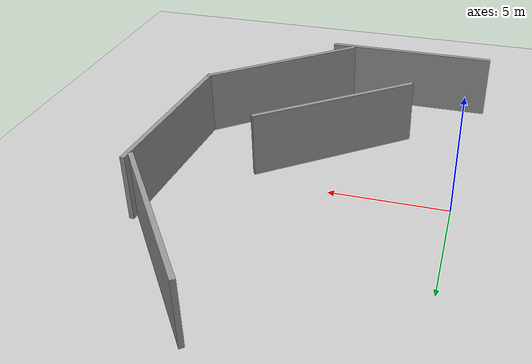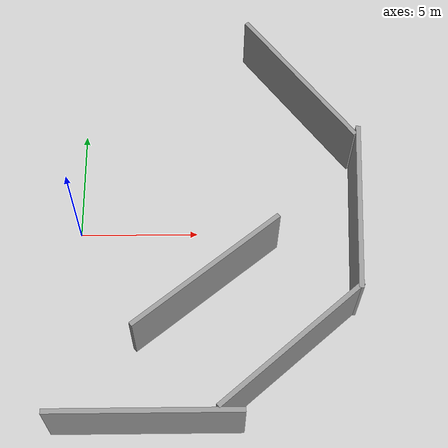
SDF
<sdf version="1.7">
 <world name="default">
  <model name="ground_plane">
   <static>1</static>
   <link name="link_1">
    <collision name="collision">
     <geometry><plane><normal>0 0 1</normal><size>100 100</size></plane></geometry>
     <surface><friction><ode><mu>100</mu><mu2>50</mu2></ode></friction></surface>
    </collision>
    <visual name="visual">
     <cast_shadows>0</cast_shadows>
     <geometry><plane><normal>0 0 1</normal><size>100 100</size></plane></geometry>
     <material>
      <script><uri>file://media/materials/scripts/gazebo.material</uri><name>Gazebo/Grey</name></script>
     </material>
    </visual>
   </link>
  </model>
  <model name="grey_wall_clone_1">
   <static>1</static>
   <link name="link_5">
    <pose>0 0 1.4 0 -0 0</pose>
    <collision name="collision"><geometry><box><size>7.5 0.2 2.8</size></box></geometry></collision>
    <visual name="visual">
     <cast_shadows>0</cast_shadows>
     <geometry><box><size>7.5 0.2 2.8</size></box></geometry>
     <material>
      <script>
       <uri>model://grey_wall/materials/scripts</uri>
       <uri>model://grey_wall/materials/textures</uri>
       <name>vrc/grey_wall</name>
      </script>
     </material>
    </visual>
   </link>
   <pose>3.05001 -8.55167 0 0 -0 0</pose>
  </model>
  <model name="grey_wall_clone_2">
   <static>1</static>
   <link name="link_6">
    <pose>0 0 1.4 0 -0 0</pose>
    <collision name="collision"><geometry><box><size>7.5 0.2 2.8</size></box></geometry></collision>
    <visual name="visual">
     <cast_shadows>0</cast_shadows>
     <geometry><box><size>7.5 0.2 2.8</size></box></geometry>
     <material>
      <script>
       <uri>model://grey_wall/materials/scripts</uri>
       <uri>model://grey_wall/materials/textures</uri>
       <name>vrc/grey_wall</name>
      </script>
     </material>
    </visual>
   </link>
   <pose>8.63119 -5.99078 0 0 -0 0.703828</pose>
  </model>
  <model name="grey_wall_clone_2_clone">
   <static>1</static>
   <link name="link_7">
    <pose>0 0 1.4 0 -0 0</pose>
    <collision name="collision"><geometry><box><size>7.5 0.2 2.8</size></box></geometry></collision>
    <visual name="visual">
     <cast_shadows>0</cast_shadows>
     <geometry><box><size>7.5 0.2 2.8</size></box></geometry>
     <material>
      <script>
       <uri>model://grey_wall/materials/scripts</uri>
       <uri>model://grey_wall/materials/textures</uri>
       <name>vrc/grey_wall</name>
      </script>
     </material>
    </visual>
   </link>
   <pose>11.6453 -0.034144 0 0 -0 1.50763</pose>
  </model>
  <model name="grey_wall_clone_2_clone_clone">
   <static>1</static>
   <link name="link_8">
    <pose>0 0 1.4 0 -0 0</pose>
    <collision name="collision"><geometry><box><size>7.5 0.2 2.8</size></box></geometry></collision>
    <visual name="visual">
     <cast_shadows>0</cast_shadows>
     <geometry><box><size>7.5 0.2 2.8</size></box></geometry>
     <material>
      <script>
       <uri>model://grey_wall/materials/scripts</uri>
       <uri>model://grey_wall/materials/textures</uri>
       <name>vrc/grey_wall</name>
      </script>
     </material>
    </visual>
   </link>
   <pose>9.51634 6.32745 0 0 -0 2.2065</pose>
  </model>
  <model name="grey_wall_clone_1_clone_0">
   <static>1</static>
   <link name="link_29">
    <pose>0 0 1.4 0 -0 0</pose>
    <collision name="collision"><geometry><box><size>7.5 0.2 2.8</size></box></geometry></collision>
    <visual name="visual">
     <cast_shadows>0</cast_shadows>
     <geometry><box><size>7.5 0.2 2.8</size></box></geometry>
     <material>
      <script>
       <uri>model://grey_wall/materials/scripts</uri>
       <uri>model://grey_wall/materials/textures</uri>
       <name>vrc/grey_wall</name>
      </script>
     </material>
    </visual>
   </link>
   <pose>5.40125 -2.88319 0 0 -0 0.672613</pose>
  </model>
 </world>
</sdf>
